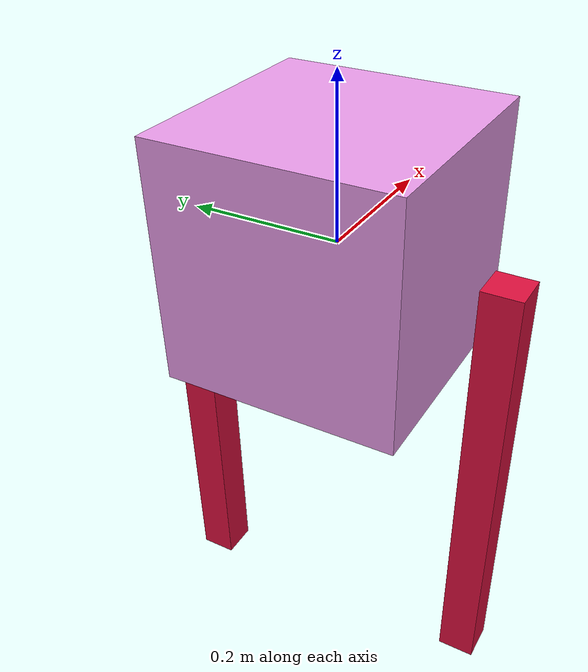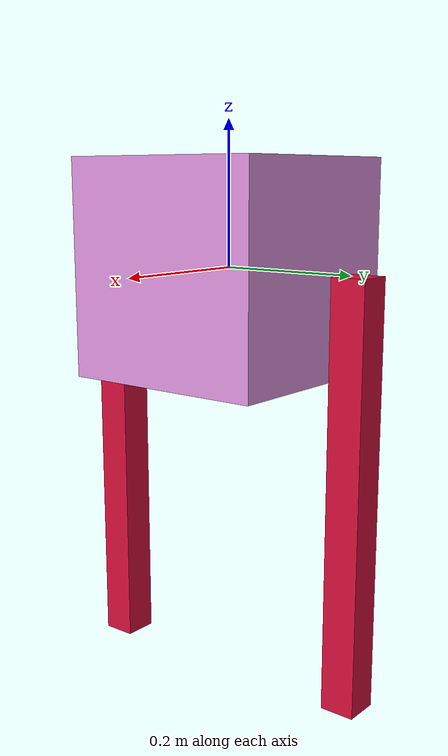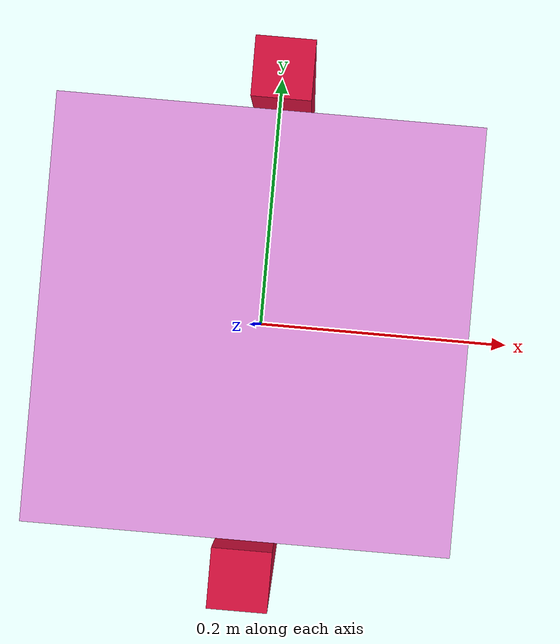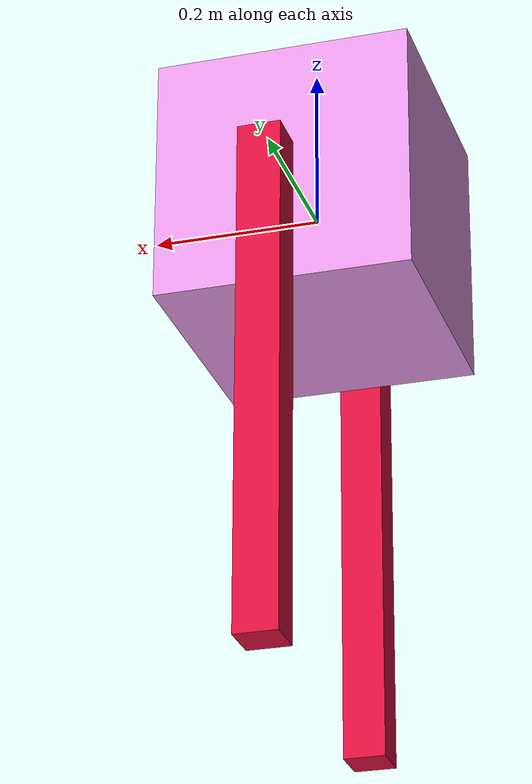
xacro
<?xml version="1.0"?>
<robot name="TL1" xmlns:xacro="http://ros.org/wiki/xacro">

  <xacro:property name="width" value="0.3" />
  <xacro:property name="width_leg" value="0.05" />
  <xacro:property name="leglen" value="0.6" />
  <xacro:property name="pi" value="3.1415" />

  <material name="plum">
    <color rgba="0.9 0.6 0.9 1"/>
  </material>

  <material name="crimson">
    <color rgba="0.86 0.06 0.24 1"/>
  </material>

  <material name="black">
    <color rgba="0 0 0 1"/>
  </material>

  <material name="white">
    <color rgba="1 1 1 1"/>
  </material>

  <link name="dummy">
   </link>

  <joint name="dummy_joint" type="fixed">
     <parent link="dummy"/>
     <child link="base_link"/>
   </joint>

  <link name="base_link">
    <visual>
      <geometry>
        <box size="${width} ${width} ${width}"/>
      </geometry>
      <material name="plum"/>
    </visual>
    <collision>
      <geometry>
        <box size="${width} ${width} ${width}"/>
      </geometry>
    </collision>
        <inertial>
      <mass value="4" />
      <inertia ixx="1.0" ixy="0.0" ixz="0.0" iyy="1.0" iyz="0.0" izz="1.0" />
    </inertial>
  </link>

  <link name="left_leg">
      <visual>
        <geometry>
          <box size="${leglen} ${width_leg} ${width_leg}"/>
        </geometry>
        <origin xyz="0 0 -${width}" rpy="0 ${pi/2} 0"/>
        <material name="crimson"/>
      </visual>

      <collision>
        <geometry>
          <box size="${leglen} ${width_leg} ${width_leg}"/>
        </geometry>
        <origin xyz="0 0 -${width}" rpy="0 ${pi/2} 0"/>
      </collision>
    <inertial>
    <origin xyz="0 0 -${leglen/2}"  rpy="0 0 0" />
      <mass value="1" />
      <inertia ixx="1.0" ixy="0.0" ixz="0.0" iyy="1.0" iyz="0.0" izz="1.0" />
    </inertial>
    </link>

    <joint name="base_to_left_leg" type="continuous">
      <parent link="base_link"/>
      <child link="left_leg"/>
      <origin xyz="0 ${(width/2+.06)} 0"/>
      <axis xyz="0 1 0"/>
      <limit effort="10" velocity="10"/>
      <dynamics damping="0.7"/>
    </joint>

    <link name="right_leg">
      <visual>
        <geometry>
          <box size="${leglen} ${width_leg} ${width_leg}"/>
        </geometry>
        <origin xyz="0 0 -${width}" rpy="0 ${pi/2} 0"/>
        <material name="crimson"/>
      </visual>

      <collision>
        <geometry>
          <box size="${leglen} ${width_leg} ${width_leg}"/>
        </geometry>
        <origin xyz="0 0 -${width}" rpy="0 ${pi/2} 0"/>
      </collision>
          <inertial>
            <origin xyz="0 0 -${leglen/2}"  rpy="0 0 0" />
            <mass value="1" />
            <inertia ixx="1.0" ixy="0.0" ixz="0.0" iyy="1.0" iyz="0.0" izz="1.0" />
          </inertial>
    </link>

    <joint name="base_to_right_leg" type="continuous">
      <parent link="base_link"/>
      <child link="right_leg"/>
      <origin xyz="0 ${-1*(width/2+.06)} 0"/>
      <axis xyz="0 1 0"/>
      <limit effort="10" velocity="10"/>
      <dynamics damping="0.7"/>
    </joint>

    <gazebo reference="left_leg">
      <mu1 value="0.2"/>
      <mu2 value="0.2"/>
      <material>Gazebo/Grey</material>
    </gazebo>

    <gazebo reference="right_leg">
      <mu1 value="0.2"/>
      <mu2 value="0.2"/>
      <material>Gazebo/Grey</material>
    </gazebo>

    <transmission name="tran1">
    <type>transmission_interface/SimpleTransmission</type>
    <joint name="base_to_left_leg">
      <hardwareInterface>hardware_interface/EffortJointInterface</hardwareInterface>
    </joint>
    <actuator name="motor1">
      <hardwareInterface>hardware_interface/EffortJointInterface</hardwareInterface>
      <mechanicalReduction>1</mechanicalReduction>
    </actuator>
  </transmission>

  <transmission name="tran2">
    <type>transmission_interface/SimpleTransmission</type>
    <joint name="base_to_right_leg">
      <hardwareInterface>hardware_interface/EffortJointInterface</hardwareInterface>
    </joint>
    <actuator name="motor2">
      <hardwareInterface>hardware_interface/EffortJointInterface</hardwareInterface>
      <mechanicalReduction>1</mechanicalReduction>
    </actuator>
  </transmission>

  <gazebo>
    <plugin name="gazebo_ros_control" filename="libgazebo_ros_control.so">
      <robotNamespace>/tl1</robotNamespace>
      <robotSimType>gazebo_ros_control/DefaultRobotHWSim</robotSimType>
    </plugin>
  </gazebo>
</robot>
